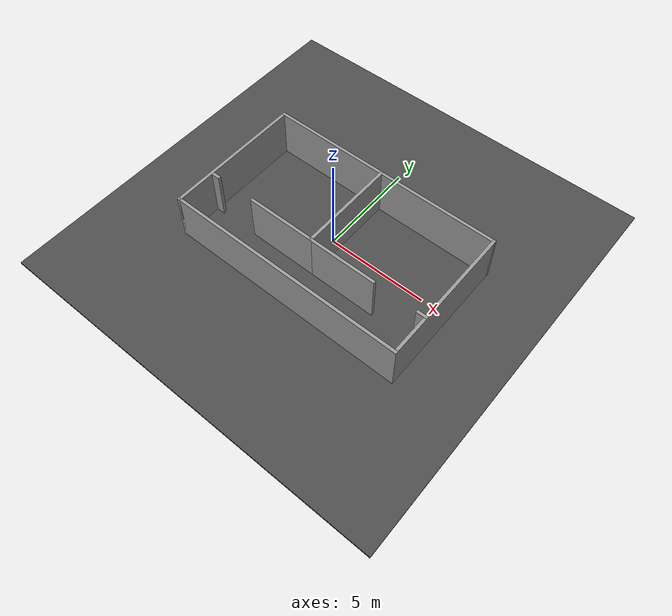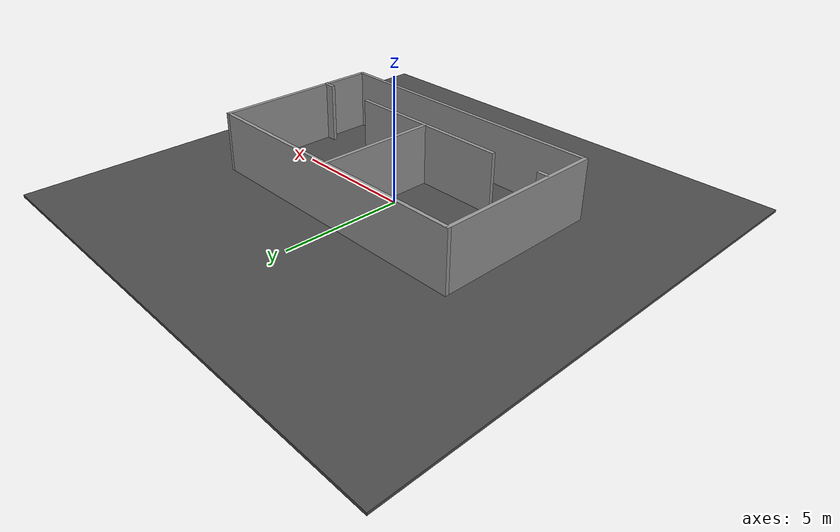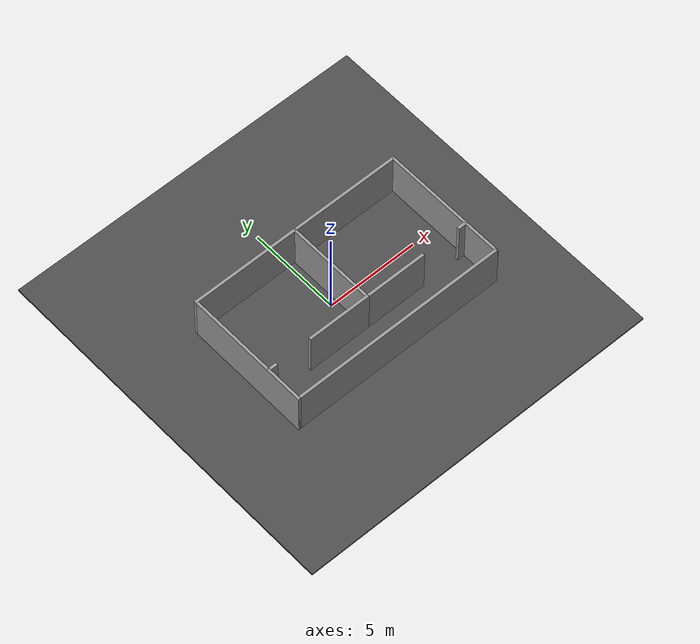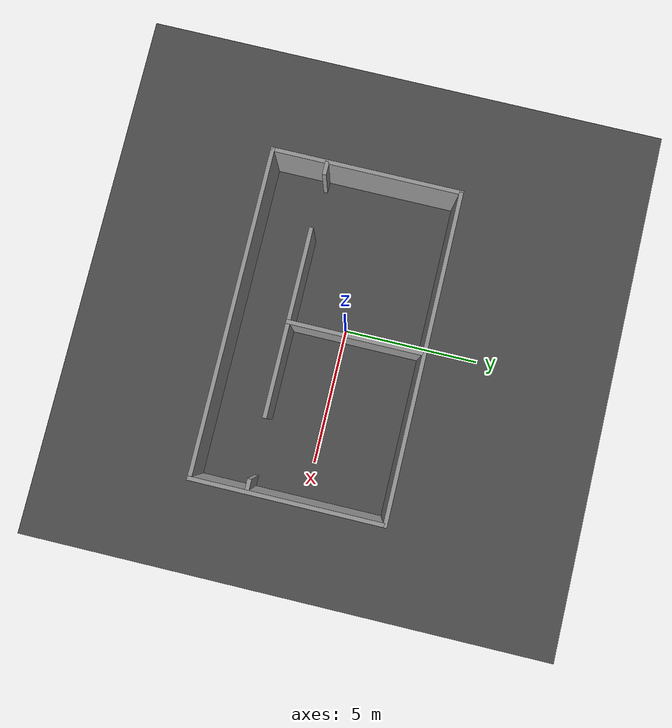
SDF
<sdf version="1.6">
 <world name="default">
  <scene><ambient>0.5 0.5 0.5 1</ambient><background>0.5 0.5 0.5 1</background><shadows>0</shadows></scene>
  <physics name="default_physics" default="0" type="ode">
   <ode>
    <solver>
     <type>quick</type>
     <iters>10</iters>
     <sor>1.3</sor>
     <use_dynamic_moi_rescaling>0</use_dynamic_moi_rescaling>
    </solver>
    <constraints>
     <cfm>0</cfm>
     <erp>0.2</erp>
     <contact_max_correcting_vel>100</contact_max_correcting_vel>
     <contact_surface_layer>0.001</contact_surface_layer>
    </constraints>
   </ode>
   <real_time_update_rate>1000</real_time_update_rate>
   <max_step_size>0.001</max_step_size>
   <real_time_factor>1</real_time_factor>
  </physics>
  <light name="directional_light_1" type="directional">
   <cast_shadows>0</cast_shadows>
   <pose>0 0 30 0.1 0.1 0</pose>
   <diffuse>1 1 1 1</diffuse>
   <specular>0.1 0.1 0.1 1</specular>
   <attenuation><range>300</range></attenuation>
   <direction>0.1 0.1 -1</direction>
  </light>
  <model name="plane_model">
   <static>1</static>
   <link name="plane_model_link">
    <collision name="plane_model_collision">
     <geometry><plane><normal>0 0 1</normal><size>1 1</size></plane></geometry>
     <surface>
      <friction><ode><mu>10</mu><mu2>10</mu2><fdir1>0 0 0</fdir1><slip1>0</slip1><slip2>0</slip2></ode></friction>
      <bounce><restitution_coefficient>0</restitution_coefficient><threshold>1e+06</threshold></bounce>
      <contact>
       <ode>
        <soft_cfm>0</soft_cfm>
        <soft_erp>0.2</soft_erp>
        <kp>1e+10</kp>
        <kd>1</kd>
        <max_vel>100</max_vel>
        <min_depth>0.0001</min_depth>
       </ode>
      </contact>
     </surface>
    </collision>
    <velocity_decay><linear>0</linear><angular>0</angular></velocity_decay>
   </link>
  </model>
  <spherical_coordinates>
   <surface_model>EARTH_WGS84</surface_model>
   <latitude_deg>0</latitude_deg>
   <longitude_deg>0</longitude_deg>
   <elevation>0</elevation>
   <heading_deg>0</heading_deg>
  </spherical_coordinates>
  <gravity>0 0 -9.81</gravity>
  <magnetic_field>6e-06 2.3e-05 -4.2e-05</magnetic_field>
  <atmosphere type="adiabatic"/>
  <light name="user_point_light_0" type="point">
   <pose>3.69641 -2.26449 1 0 -0 0</pose>
   <diffuse>0.5 0.5 0.5 1</diffuse>
   <specular>0.1 0.1 0.1 1</specular>
   <attenuation>
    <range>20</range>
    <constant>0.5</constant>
    <linear>0.01</linear>
    <quadratic>0.001</quadratic>
   </attenuation>
   <cast_shadows>0</cast_shadows>
   <direction>0 0 -1</direction>
  </light>
  <light name="user_spot_light_0" type="spot">
   <pose>4.11723 -3.15902 1 0 -0 0</pose>
   <diffuse>0.5 0.5 0.5 1</diffuse>
   <specular>0.1 0.1 0.1 1</specular>
   <direction>0 0 -1</direction>
   <attenuation>
    <range>20</range>
    <constant>0.5</constant>
    <linear>0.01</linear>
    <quadratic>0.001</quadratic>
   </attenuation>
   <cast_shadows>0</cast_shadows>
   <spot><inner_angle>0.6</inner_angle><outer_angle>1</outer_angle><falloff>1</falloff></spot>
  </light>
  <model name="asphalt_plane">
   <static>1</static>
   <link name="link">
    <collision name="collision"><geometry><box><size>20 20 0.1</size></box></geometry></collision>
    <visual name="visual">
     <cast_shadows>0</cast_shadows>
     <geometry><box><size>20 20 0.1</size></box></geometry>
     <material>
      <script>
       <uri>model://asphalt_plane/materials/scripts</uri>
       <uri>model://asphalt_plane/materials/textures</uri>
       <name>vrc/asphalt</name>
      </script>
     </material>
    </visual>
   </link>
   <pose>-0.00383 0.059474 0 0 -0 0</pose>
  </model>
  <model name="two_room">
   <pose>0.466495 -0.531682 0 0 -0 0</pose>
   <link name="Wall_10">
    <collision name="Wall_10_Collision">
     <geometry><box><size>5 0.15 2.5</size></box></geometry>
     <pose>0 0 1.25 0 -0 0</pose>
    </collision>
    <visual name="Wall_10_Visual">
     <pose>0 0 1.25 0 -0 0</pose>
     <geometry><box><size>5 0.15 2.5</size></box></geometry>
     <material>
      <script><uri>file://media/materials/scripts/gazebo.material</uri><name>Gazebo/Grey</name></script>
      <ambient>1 1 1 1</ambient>
     </material>
    </visual>
    <pose>-0.069306 0.99918 0 0 0 -1.5708</pose>
   </link>
   <link name="Wall_11">
    <collision name="Wall_11_Collision">
     <geometry><box><size>3.5 0.15 2.5</size></box></geometry>
     <pose>0 0 1.25 0 -0 0</pose>
    </collision>
    <visual name="Wall_11_Visual">
     <pose>0 0 1.25 0 -0 0</pose>
     <geometry><box><size>3.5 0.15 2.5</size></box></geometry>
     <material>
      <script><uri>file://media/materials/scripts/gazebo.material</uri><name>Gazebo/Grey</name></script>
      <ambient>1 1 1 1</ambient>
     </material>
    </visual>
    <pose>-1.74431 -1.42582 0 0 -0 3.14159</pose>
   </link>
   <link name="Wall_15">
    <collision name="Wall_15_Collision">
     <geometry><box><size>0.5 0.15 2.5</size></box></geometry>
     <pose>0 0 1.25 0 -0 0</pose>
    </collision>
    <visual name="Wall_15_Visual">
     <pose>0 0 1.25 0 -0 0</pose>
     <geometry><box><size>0.5 0.15 2.5</size></box></geometry>
     <material>
      <script><uri>file://media/materials/scripts/gazebo.material</uri><name>Gazebo/Grey</name></script>
      <ambient>1 1 1 1</ambient>
     </material>
    </visual>
    <pose>5.71981 -1.42057 0 0 -0 3.14159</pose>
   </link>
   <link name="Wall_17">
    <collision name="Wall_17_Collision">
     <geometry><box><size>3.5 0.15 2.5</size></box></geometry>
     <pose>0 0 1.25 0 -0 0</pose>
    </collision>
    <visual name="Wall_17_Visual">
     <pose>0 0 1.25 0 -0 0</pose>
     <geometry><box><size>3.5 0.15 2.5</size></box></geometry>
     <material>
      <script><uri>file://media/materials/scripts/gazebo.material</uri><name>Gazebo/Grey</name></script>
      <ambient>1 1 1 1</ambient>
     </material>
    </visual>
    <pose>1.60569 -1.42582 0 0 -0 0</pose>
   </link>
   <link name="Wall_21">
    <collision name="Wall_21_Collision">
     <geometry><box><size>0.5 0.15 2.5</size></box></geometry>
     <pose>0 0 1.25 0 -0 0</pose>
    </collision>
    <visual name="Wall_21_Visual">
     <pose>0 0 1.25 0 -0 0</pose>
     <geometry><box><size>0.5 0.15 2.5</size></box></geometry>
     <material>
      <script><uri>file://media/materials/scripts/gazebo.material</uri><name>Gazebo/Grey</name></script>
      <ambient>1 1 1 1</ambient>
     </material>
    </visual>
    <pose>-5.69065 -1.43697 0 0 -0 0</pose>
   </link>
   <link name="Wall_5">
    <collision name="Wall_5_Collision">
     <geometry><box><size>7 0.15 2.5</size></box></geometry>
     <pose>0 0 1.25 0 -0 0</pose>
    </collision>
    <visual name="Wall_5_Visual">
     <pose>0 0 1.25 0 -0 0</pose>
     <geometry><box><size>7 0.15 2.5</size></box></geometry>
     <material>
      <script><uri>file://media/materials/scripts/gazebo.material</uri><name>Gazebo/Grey</name></script>
      <ambient>1 1 1 1</ambient>
     </material>
    </visual>
    <pose>-5.925 0 0 0 0 -1.5708</pose>
   </link>
   <link name="Wall_6">
    <collision name="Wall_6_Collision">
     <geometry><box><size>12 0.15 2.5</size></box></geometry>
     <pose>0 0 1.25 0 -0 0</pose>
    </collision>
    <visual name="Wall_6_Visual">
     <pose>0 0 1.25 0 -0 0</pose>
     <geometry><box><size>12 0.15 2.5</size></box></geometry>
     <material>
      <script><uri>file://media/materials/scripts/gazebo.material</uri><name>Gazebo/Grey</name></script>
      <ambient>1 1 1 1</ambient>
     </material>
    </visual>
    <pose>0 -3.425 0 0 -0 0</pose>
   </link>
   <link name="Wall_7">
    <collision name="Wall_7_Collision">
     <geometry><box><size>7 0.15 2.5</size></box></geometry>
     <pose>0 0 1.25 0 -0 0</pose>
    </collision>
    <visual name="Wall_7_Visual">
     <pose>0 0 1.25 0 -0 0</pose>
     <geometry><box><size>7 0.15 2.5</size></box></geometry>
     <material>
      <script><uri>file://media/materials/scripts/gazebo.material</uri><name>Gazebo/Grey</name></script>
      <ambient>1 1 1 1</ambient>
     </material>
    </visual>
    <pose>5.925 0 0 0 -0 1.5708</pose>
   </link>
   <link name="Wall_8">
    <collision name="Wall_8_Collision">
     <geometry><box><size>12 0.15 2.5</size></box></geometry>
     <pose>0 0 1.25 0 -0 0</pose>
    </collision>
    <visual name="Wall_8_Visual">
     <pose>0 0 1.25 0 -0 0</pose>
     <geometry><box><size>12 0.15 2.5</size></box></geometry>
     <material>
      <script><uri>file://media/materials/scripts/gazebo.material</uri><name>Gazebo/Grey</name></script>
      <ambient>1 1 1 1</ambient>
     </material>
    </visual>
    <pose>0 3.425 0 0 -0 3.14159</pose>
   </link>
   <static>1</static>
  </model>
 </world>
</sdf>
